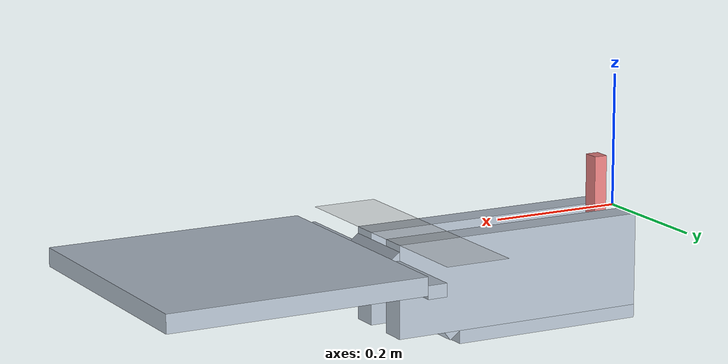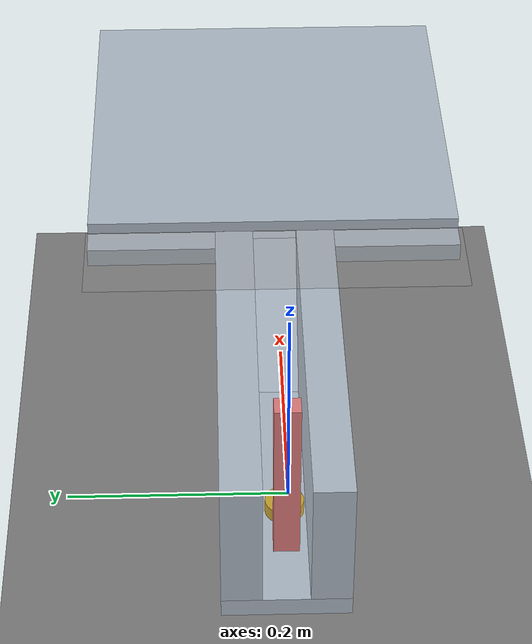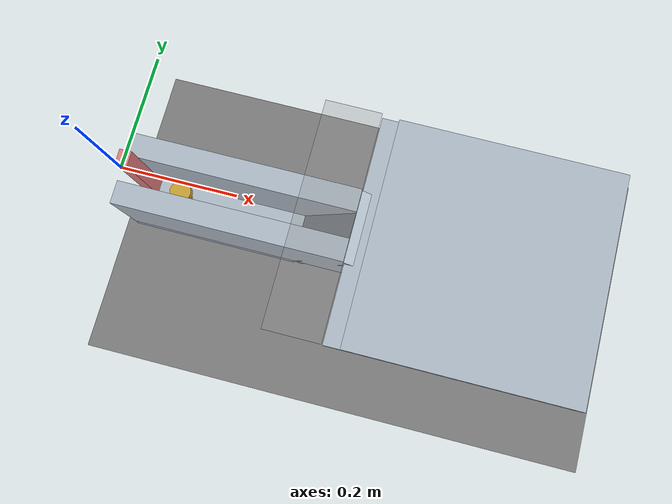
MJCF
<mujoco model="feed"><option timestep="0.0004" gravity="0 0 -9.81" integrator="implicitfast" cone="elliptic" impratio="10"><flag multiccd="enable"/></option>
<visual><global offwidth="1280" offheight="720"/></visual>
<worldbody><light pos="0.5 -1 2" dir="-0.3 0.5 -1"/><camera name="iso" pos="0.4000 -0.6000 0.3500" xyaxes="1.0000 -0.0000 0.0000 0.0000 0.5547 0.8321"/>
<geom name="shelf-1" type="box" pos="0.20000 -0.04300 -0.07000" size="0.20000 0.02000 0.07000" rgba="0.7 0.75 0.8 1" friction="0.3 0.005 0.0001"/>
<geom name="shelf1" type="box" pos="0.20000 0.04300 -0.07000" size="0.20000 0.02000 0.07000" rgba="0.7 0.75 0.8 1" friction="0.3 0.005 0.0001"/>
<geom name="floor0" type="box" pos="0.15000 0.00000 -0.15000" size="0.15000 0.06300 0.01000" rgba="0.7 0.75 0.8 1" friction="0.3 0.005 0.0001"/>
<geom name="ramp" type="box" pos="0.35793 0.00000 -0.08110" size="0.08201 0.06300 0.01000" xyaxes="0.609711 0.000000 0.792624 0.000000 1.000000 0.000000" rgba="0.7 0.75 0.8 1" friction="0.3 0.005 0.0001"/>
<geom name="track" type="box" pos="0.41500 0.00000 -0.03300" size="0.01500 0.20000 0.01000" rgba="0.7 0.75 0.8 1" friction="0.3 0.005 0.0001"/>
<geom name="plate" type="box" pos="0.63000 0.00000 -0.02400" size="0.20000 0.20000 0.01400" rgba="0.7 0.75 0.8 1" friction="0.3 0.005 0.0001"/>
<geom name="backwall" type="box" pos="0.34990 0.00000 0.00000" size="0.05000 0.20000 0.00010" rgba="0.6 0.6 0.6 0.3" friction="0.3 0.005 0.0001"/>
<geom name="ground" type="plane" pos="0 0 -0.4" size="3 3 0.1"/>
<body name="pusher" mocap="true" pos="0.03000 0 -0.00750"><geom name="tooth" type="box" size="0.01000 0.01250 0.08750" rgba="0.9 0.5 0.5 1" friction="0.3 0.005 0.0001"/></body>
<body name="s0" pos="0.08000 0 -0.13950"><freejoint/>
<geom name="s0_sh" type="cylinder" size="0.01000 0.02000" pos="0 0 0.02000" density="7850" rgba="0.8 0.65 0.2 1" friction="0.3 0.005 0.0001"/>
<geom name="s0_hd" type="cylinder" size="0.01900 0.00700" pos="0 0 0.04700" density="7850" rgba="0.8 0.65 0.2 1" friction="0.3 0.005 0.0001"/>
</body>
</worldbody></mujoco>
